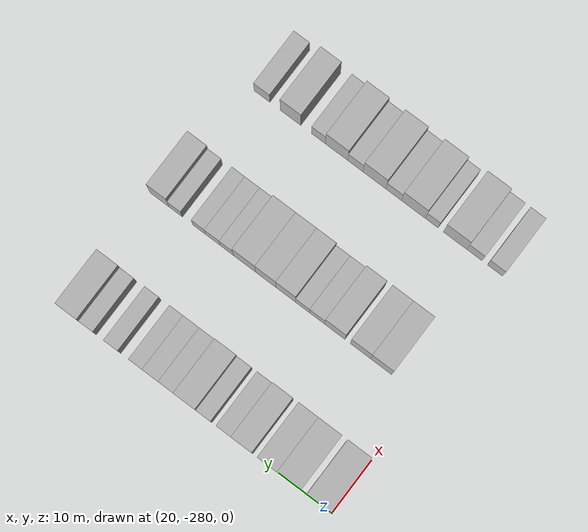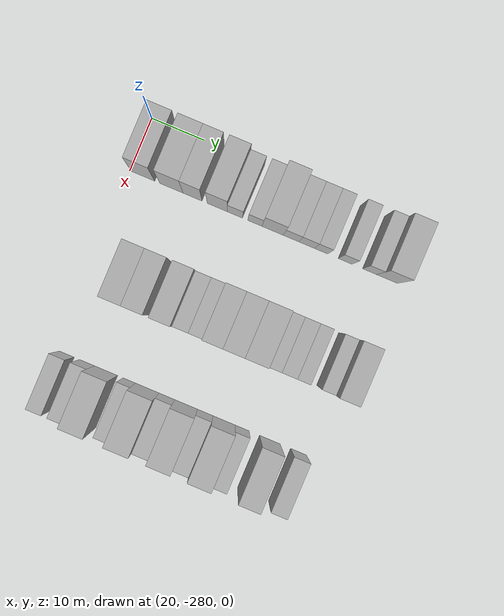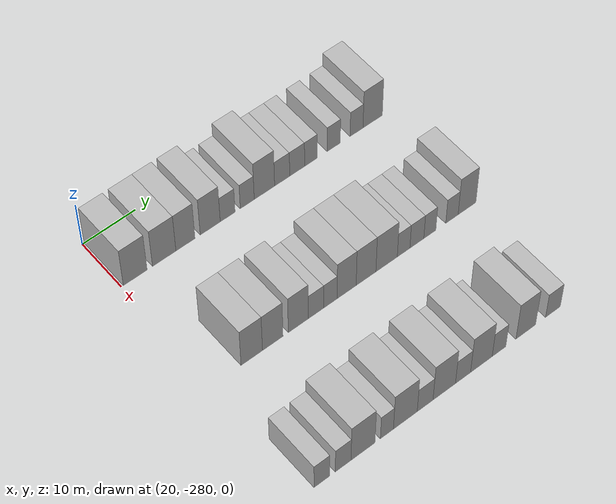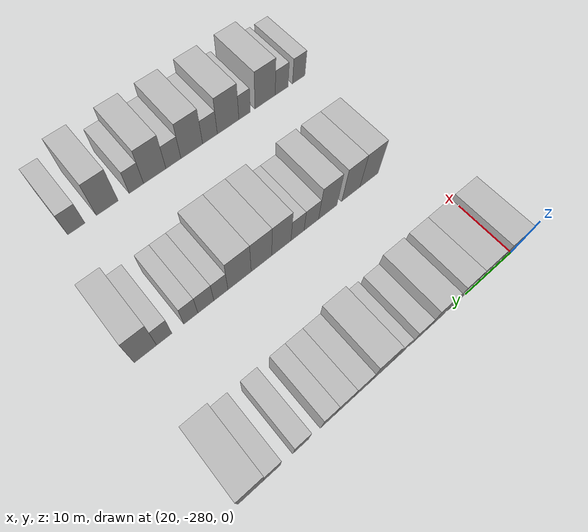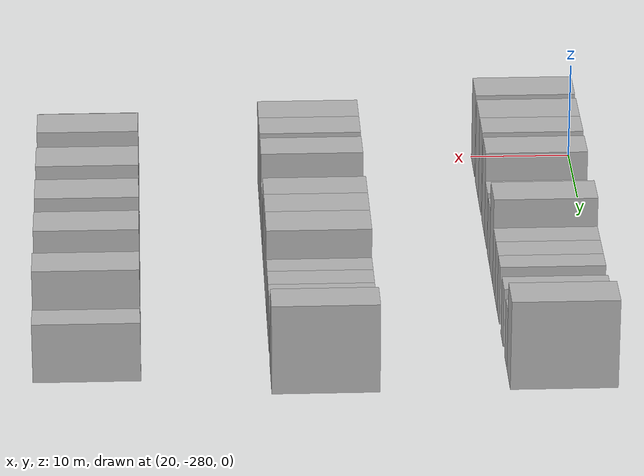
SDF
<sdf version="1.6">
 <world name="default">
  <model name="building_25">
   <static>1</static>
   <pose>25.0000 -277.4600 0 0.000000 0.000000 0.000000</pose>
   <link name="link">
    <pose>0 0 4.50 0 0 0</pose>
    <collision name="collision"><geometry><box><size>10.0000 4.4136 9.0000</size></box></geometry></collision>
    <visual name="visual">
     <cast_shadows>0</cast_shadows>
     <geometry><box><size>10.0000 4.4136 9.0000</size></box></geometry>
     <material>
      <script>
       <uri>model://HANNAS_wall/materials/scripts</uri>
       <uri>model://HANNAS_wall/materials/textures</uri>
       <name>vrc/HANNAS_wall</name>
      </script>
     </material>
    </visual>
   </link>
  </model>
  <model name="building_26">
   <static>1</static>
   <pose>25.0000 -272.0558 0 0.000000 0.000000 0.000000</pose>
   <link name="link">
    <pose>0 0 4.50 0 0 0</pose>
    <collision name="collision"><geometry><box><size>10.0000 4.3947 9.0000</size></box></geometry></collision>
    <visual name="visual">
     <cast_shadows>0</cast_shadows>
     <geometry><box><size>10.0000 4.3947 9.0000</size></box></geometry>
     <material>
      <script>
       <uri>model://HANNAS_wall/materials/scripts</uri>
       <uri>model://HANNAS_wall/materials/textures</uri>
       <name>vrc/HANNAS_wall</name>
      </script>
     </material>
    </visual>
   </link>
  </model>
  <model name="building_27">
   <static>1</static>
   <pose>25.0000 -268.0545 0 0.000000 0.000000 0.000000</pose>
   <link name="link">
    <pose>0 0 4.50 0 0 0</pose>
    <collision name="collision"><geometry><box><size>10.0000 3.6079 9.0000</size></box></geometry></collision>
    <visual name="visual">
     <cast_shadows>0</cast_shadows>
     <geometry><box><size>10.0000 3.6079 9.0000</size></box></geometry>
     <material>
      <script>
       <uri>model://HANNAS_wall/materials/scripts</uri>
       <uri>model://HANNAS_wall/materials/textures</uri>
       <name>vrc/HANNAS_wall</name>
      </script>
     </material>
    </visual>
   </link>
  </model>
  <model name="building_28">
   <static>1</static>
   <pose>25.0000 -263.3341 0 0.000000 0.000000 0.000000</pose>
   <link name="link">
    <pose>0 0 4.50 0 0 0</pose>
    <collision name="collision"><geometry><box><size>10.0000 3.8330 9.0000</size></box></geometry></collision>
    <visual name="visual">
     <cast_shadows>0</cast_shadows>
     <geometry><box><size>10.0000 3.8330 9.0000</size></box></geometry>
     <material>
      <script>
       <uri>model://HANNAS_wall/materials/scripts</uri>
       <uri>model://HANNAS_wall/materials/textures</uri>
       <name>vrc/HANNAS_wall</name>
      </script>
     </material>
    </visual>
   </link>
  </model>
  <model name="building_29">
   <static>1</static>
   <pose>25.0000 -259.9843 0 0.000000 0.000000 0.000000</pose>
   <link name="link">
    <pose>0 0 3.00 0 0 0</pose>
    <collision name="collision"><geometry><box><size>10.0000 2.8665 6.0000</size></box></geometry></collision>
    <visual name="visual">
     <cast_shadows>0</cast_shadows>
     <geometry><box><size>10.0000 2.8665 6.0000</size></box></geometry>
     <material>
      <script>
       <uri>model://HANNAS_wall/materials/scripts</uri>
       <uri>model://HANNAS_wall/materials/textures</uri>
       <name>vrc/HANNAS_wall</name>
      </script>
     </material>
    </visual>
   </link>
  </model>
  <model name="building_30">
   <static>1</static>
   <pose>25.0000 -256.1881 0 0.000000 0.000000 0.000000</pose>
   <link name="link">
    <pose>0 0 3.00 0 0 0</pose>
    <collision name="collision"><geometry><box><size>10.0000 2.7260 6.0000</size></box></geometry></collision>
    <visual name="visual">
     <cast_shadows>0</cast_shadows>
     <geometry><box><size>10.0000 2.7260 6.0000</size></box></geometry>
     <material>
      <script>
       <uri>model://HANNAS_wall/materials/scripts</uri>
       <uri>model://HANNAS_wall/materials/textures</uri>
       <name>vrc/HANNAS_wall</name>
      </script>
     </material>
    </visual>
   </link>
  </model>
  <model name="building_31">
   <static>1</static>
   <pose>25.0000 -252.8242 0 0.000000 0.000000 0.000000</pose>
   <link name="link">
    <pose>0 0 4.50 0 0 0</pose>
    <collision name="collision"><geometry><box><size>10.0000 4.0017 9.0000</size></box></geometry></collision>
    <visual name="visual">
     <cast_shadows>0</cast_shadows>
     <geometry><box><size>10.0000 4.0017 9.0000</size></box></geometry>
     <material>
      <script>
       <uri>model://HANNAS_wall/materials/scripts</uri>
       <uri>model://HANNAS_wall/materials/textures</uri>
       <name>vrc/HANNAS_wall</name>
      </script>
     </material>
    </visual>
   </link>
  </model>
  <model name="building_32">
   <static>1</static>
   <pose>25.0000 -249.3260 0 0.000000 0.000000 0.000000</pose>
   <link name="link">
    <pose>0 0 3.00 0 0 0</pose>
    <collision name="collision"><geometry><box><size>10.0000 2.9947 6.0000</size></box></geometry></collision>
    <visual name="visual">
     <cast_shadows>0</cast_shadows>
     <geometry><box><size>10.0000 2.9947 6.0000</size></box></geometry>
     <material>
      <script>
       <uri>model://HANNAS_wall/materials/scripts</uri>
       <uri>model://HANNAS_wall/materials/textures</uri>
       <name>vrc/HANNAS_wall</name>
      </script>
     </material>
    </visual>
   </link>
  </model>
  <model name="building_33">
   <static>1</static>
   <pose>25.0000 -246.3432 0 0.000000 0.000000 0.000000</pose>
   <link name="link">
    <pose>0 0 3.00 0 0 0</pose>
    <collision name="collision"><geometry><box><size>10.0000 2.9708 6.0000</size></box></geometry></collision>
    <visual name="visual">
     <cast_shadows>0</cast_shadows>
     <geometry><box><size>10.0000 2.9708 6.0000</size></box></geometry>
     <material>
      <script>
       <uri>model://HANNAS_wall/materials/scripts</uri>
       <uri>model://HANNAS_wall/materials/textures</uri>
       <name>vrc/HANNAS_wall</name>
      </script>
     </material>
    </visual>
   </link>
  </model>
  <model name="building_34">
   <static>1</static>
   <pose>25.0000 -243.5842 0 0.000000 0.000000 0.000000</pose>
   <link name="link">
    <pose>0 0 3.00 0 0 0</pose>
    <collision name="collision"><geometry><box><size>10.0000 2.5471 6.0000</size></box></geometry></collision>
    <visual name="visual">
     <cast_shadows>0</cast_shadows>
     <geometry><box><size>10.0000 2.5471 6.0000</size></box></geometry>
     <material>
      <script>
       <uri>model://HANNAS_wall/materials/scripts</uri>
       <uri>model://HANNAS_wall/materials/textures</uri>
       <name>vrc/HANNAS_wall</name>
      </script>
     </material>
    </visual>
   </link>
  </model>
  <model name="building_35">
   <static>1</static>
   <pose>25.0000 -238.9845 0 0.000000 0.000000 0.000000</pose>
   <link name="link">
    <pose>0 0 3.00 0 0 0</pose>
    <collision name="collision"><geometry><box><size>10.0000 2.6523 6.0000</size></box></geometry></collision>
    <visual name="visual">
     <cast_shadows>0</cast_shadows>
     <geometry><box><size>10.0000 2.6523 6.0000</size></box></geometry>
     <material>
      <script>
       <uri>model://HANNAS_wall/materials/scripts</uri>
       <uri>model://HANNAS_wall/materials/textures</uri>
       <name>vrc/HANNAS_wall</name>
      </script>
     </material>
    </visual>
   </link>
  </model>
  <model name="building_36">
   <static>1</static>
   <pose>25.0000 -234.3334 0 0.000000 0.000000 0.000000</pose>
   <link name="link">
    <pose>0 0 3.00 0 0 0</pose>
    <collision name="collision"><geometry><box><size>10.0000 2.6500 6.0000</size></box></geometry></collision>
    <visual name="visual">
     <cast_shadows>0</cast_shadows>
     <geometry><box><size>10.0000 2.6500 6.0000</size></box></geometry>
     <material>
      <script>
       <uri>model://HANNAS_wall/materials/scripts</uri>
       <uri>model://HANNAS_wall/materials/textures</uri>
       <name>vrc/HANNAS_wall</name>
      </script>
     </material>
    </visual>
   </link>
  </model>
  <model name="building_37">
   <static>1</static>
   <pose>25.0000 -231.0118 0 0.000000 0.000000 0.000000</pose>
   <link name="link">
    <pose>0 0 4.50 0 0 0</pose>
    <collision name="collision"><geometry><box><size>10.0000 3.9930 9.0000</size></box></geometry></collision>
    <visual name="visual">
     <cast_shadows>0</cast_shadows>
     <geometry><box><size>10.0000 3.9930 9.0000</size></box></geometry>
     <material>
      <script>
       <uri>model://HANNAS_wall/materials/scripts</uri>
       <uri>model://HANNAS_wall/materials/textures</uri>
       <name>vrc/HANNAS_wall</name>
      </script>
     </material>
    </visual>
   </link>
  </model>
  <model name="building_214">
   <static>1</static>
   <pose>47.0000 -272.7263 0 0.000000 0.000000 0.000000</pose>
   <link name="link">
    <pose>0 0 4.50 0 0 0</pose>
    <collision name="collision"><geometry><box><size>10.0000 3.9725 9.0000</size></box></geometry></collision>
    <visual name="visual">
     <cast_shadows>0</cast_shadows>
     <geometry><box><size>10.0000 3.9725 9.0000</size></box></geometry>
     <material>
      <script>
       <uri>model://HANNAS_wall/materials/scripts</uri>
       <uri>model://HANNAS_wall/materials/textures</uri>
       <name>vrc/HANNAS_wall</name>
      </script>
     </material>
    </visual>
   </link>
  </model>
  <model name="building_215">
   <static>1</static>
   <pose>47.0000 -268.8265 0 0.000000 0.000000 0.000000</pose>
   <link name="link">
    <pose>0 0 4.50 0 0 0</pose>
    <collision name="collision"><geometry><box><size>10.0000 3.8269 9.0000</size></box></geometry></collision>
    <visual name="visual">
     <cast_shadows>0</cast_shadows>
     <geometry><box><size>10.0000 3.8269 9.0000</size></box></geometry>
     <material>
      <script>
       <uri>model://HANNAS_wall/materials/scripts</uri>
       <uri>model://HANNAS_wall/materials/textures</uri>
       <name>vrc/HANNAS_wall</name>
      </script>
     </material>
    </visual>
   </link>
  </model>
  <model name="building_216">
   <static>1</static>
   <pose>47.0000 -264.0176 0 0.000000 0.000000 0.000000</pose>
   <link name="link">
    <pose>0 0 4.50 0 0 0</pose>
    <collision name="collision"><geometry><box><size>10.0000 3.7909 9.0000</size></box></geometry></collision>
    <visual name="visual">
     <cast_shadows>0</cast_shadows>
     <geometry><box><size>10.0000 3.7909 9.0000</size></box></geometry>
     <material>
      <script>
       <uri>model://HANNAS_wall/materials/scripts</uri>
       <uri>model://HANNAS_wall/materials/textures</uri>
       <name>vrc/HANNAS_wall</name>
      </script>
     </material>
    </visual>
   </link>
  </model>
  <model name="building_217">
   <static>1</static>
   <pose>47.0000 -260.6690 0 0.000000 0.000000 0.000000</pose>
   <link name="link">
    <pose>0 0 3.00 0 0 0</pose>
    <collision name="collision"><geometry><box><size>10.0000 2.9064 6.0000</size></box></geometry></collision>
    <visual name="visual">
     <cast_shadows>0</cast_shadows>
     <geometry><box><size>10.0000 2.9064 6.0000</size></box></geometry>
     <material>
      <script>
       <uri>model://HANNAS_wall/materials/scripts</uri>
       <uri>model://HANNAS_wall/materials/textures</uri>
       <name>vrc/HANNAS_wall</name>
      </script>
     </material>
    </visual>
   </link>
  </model>
  <model name="building_218">
   <static>1</static>
   <pose>47.0000 -257.9251 0 0.000000 0.000000 0.000000</pose>
   <link name="link">
    <pose>0 0 3.00 0 0 0</pose>
    <collision name="collision"><geometry><box><size>10.0000 2.5814 6.0000</size></box></geometry></collision>
    <visual name="visual">
     <cast_shadows>0</cast_shadows>
     <geometry><box><size>10.0000 2.5814 6.0000</size></box></geometry>
     <material>
      <script>
       <uri>model://HANNAS_wall/materials/scripts</uri>
       <uri>model://HANNAS_wall/materials/textures</uri>
       <name>vrc/HANNAS_wall</name>
      </script>
     </material>
    </visual>
   </link>
  </model>
  <model name="building_219">
   <static>1</static>
   <pose>47.0000 -254.7875 0 0.000000 0.000000 0.000000</pose>
   <link name="link">
    <pose>0 0 4.50 0 0 0</pose>
    <collision name="collision"><geometry><box><size>10.0000 3.6937 9.0000</size></box></geometry></collision>
    <visual name="visual">
     <cast_shadows>0</cast_shadows>
     <geometry><box><size>10.0000 3.6937 9.0000</size></box></geometry>
     <material>
      <script>
       <uri>model://HANNAS_wall/materials/scripts</uri>
       <uri>model://HANNAS_wall/materials/textures</uri>
       <name>vrc/HANNAS_wall</name>
      </script>
     </material>
    </visual>
   </link>
  </model>
  <model name="building_220">
   <static>1</static>
   <pose>47.0000 -251.0122 0 0.000000 0.000000 0.000000</pose>
   <link name="link">
    <pose>0 0 4.50 0 0 0</pose>
    <collision name="collision"><geometry><box><size>10.0000 3.8569 9.0000</size></box></geometry></collision>
    <visual name="visual">
     <cast_shadows>0</cast_shadows>
     <geometry><box><size>10.0000 3.8569 9.0000</size></box></geometry>
     <material>
      <script>
       <uri>model://HANNAS_wall/materials/scripts</uri>
       <uri>model://HANNAS_wall/materials/textures</uri>
       <name>vrc/HANNAS_wall</name>
      </script>
     </material>
    </visual>
   </link>
  </model>
  <model name="building_221">
   <static>1</static>
   <pose>47.0000 -246.9754 0 0.000000 0.000000 0.000000</pose>
   <link name="link">
    <pose>0 0 4.50 0 0 0</pose>
    <collision name="collision"><geometry><box><size>10.0000 4.2168 9.0000</size></box></geometry></collision>
    <visual name="visual">
     <cast_shadows>0</cast_shadows>
     <geometry><box><size>10.0000 4.2168 9.0000</size></box></geometry>
     <material>
      <script>
       <uri>model://HANNAS_wall/materials/scripts</uri>
       <uri>model://HANNAS_wall/materials/textures</uri>
       <name>vrc/HANNAS_wall</name>
      </script>
     </material>
    </visual>
   </link>
  </model>
  <model name="building_222">
   <static>1</static>
   <pose>47.0000 -243.6121 0 0.000000 0.000000 0.000000</pose>
   <link name="link">
    <pose>0 0 3.00 0 0 0</pose>
    <collision name="collision"><geometry><box><size>10.0000 2.5097 6.0000</size></box></geometry></collision>
    <visual name="visual">
     <cast_shadows>0</cast_shadows>
     <geometry><box><size>10.0000 2.5097 6.0000</size></box></geometry>
     <material>
      <script>
       <uri>model://HANNAS_wall/materials/scripts</uri>
       <uri>model://HANNAS_wall/materials/textures</uri>
       <name>vrc/HANNAS_wall</name>
      </script>
     </material>
    </visual>
   </link>
  </model>
  <model name="building_223">
   <static>1</static>
   <pose>47.0000 -240.9663 0 0.000000 0.000000 0.000000</pose>
   <link name="link">
    <pose>0 0 3.00 0 0 0</pose>
    <collision name="collision"><geometry><box><size>10.0000 2.7819 6.0000</size></box></geometry></collision>
    <visual name="visual">
     <cast_shadows>0</cast_shadows>
     <geometry><box><size>10.0000 2.7819 6.0000</size></box></geometry>
     <material>
      <script>
       <uri>model://HANNAS_wall/materials/scripts</uri>
       <uri>model://HANNAS_wall/materials/textures</uri>
       <name>vrc/HANNAS_wall</name>
      </script>
     </material>
    </visual>
   </link>
  </model>
  <model name="building_224">
   <static>1</static>
   <pose>47.0000 -238.3632 0 0.000000 0.000000 0.000000</pose>
   <link name="link">
    <pose>0 0 3.00 0 0 0</pose>
    <collision name="collision"><geometry><box><size>10.0000 2.4244 6.0000</size></box></geometry></collision>
    <visual name="visual">
     <cast_shadows>0</cast_shadows>
     <geometry><box><size>10.0000 2.4244 6.0000</size></box></geometry>
     <material>
      <script>
       <uri>model://HANNAS_wall/materials/scripts</uri>
       <uri>model://HANNAS_wall/materials/textures</uri>
       <name>vrc/HANNAS_wall</name>
      </script>
     </material>
    </visual>
   </link>
  </model>
  <model name="building_225">
   <static>1</static>
   <pose>47.0000 -233.8902 0 0.000000 0.000000 0.000000</pose>
   <link name="link">
    <pose>0 0 3.00 0 0 0</pose>
    <collision name="collision"><geometry><box><size>10.0000 2.5216 6.0000</size></box></geometry></collision>
    <visual name="visual">
     <cast_shadows>0</cast_shadows>
     <geometry><box><size>10.0000 2.5216 6.0000</size></box></geometry>
     <material>
      <script>
       <uri>model://HANNAS_wall/materials/scripts</uri>
       <uri>model://HANNAS_wall/materials/textures</uri>
       <name>vrc/HANNAS_wall</name>
      </script>
     </material>
    </visual>
   </link>
  </model>
  <model name="building_226">
   <static>1</static>
   <pose>47.0000 -230.8095 0 0.000000 0.000000 0.000000</pose>
   <link name="link">
    <pose>0 0 4.50 0 0 0</pose>
    <collision name="collision"><geometry><box><size>10.0000 3.6398 9.0000</size></box></geometry></collision>
    <visual name="visual">
     <cast_shadows>0</cast_shadows>
     <geometry><box><size>10.0000 3.6398 9.0000</size></box></geometry>
     <material>
      <script>
       <uri>model://HANNAS_wall/materials/scripts</uri>
       <uri>model://HANNAS_wall/materials/textures</uri>
       <name>vrc/HANNAS_wall</name>
      </script>
     </material>
    </visual>
   </link>
  </model>
  <model name="building_401">
   <static>1</static>
   <pose>69.0000 -277.6956 0 0.000000 0.000000 0.000000</pose>
   <link name="link">
    <pose>0 0 3.00 0 0 0</pose>
    <collision name="collision"><geometry><box><size>10.0000 2.8400 6.0000</size></box></geometry></collision>
    <visual name="visual">
     <cast_shadows>0</cast_shadows>
     <geometry><box><size>10.0000 2.8400 6.0000</size></box></geometry>
     <material>
      <script>
       <uri>model://HANNAS_wall/materials/scripts</uri>
       <uri>model://HANNAS_wall/materials/textures</uri>
       <name>vrc/HANNAS_wall</name>
      </script>
     </material>
    </visual>
   </link>
  </model>
  <model name="building_402">
   <static>1</static>
   <pose>69.0000 -273.8410 0 0.000000 0.000000 0.000000</pose>
   <link name="link">
    <pose>0 0 3.00 0 0 0</pose>
    <collision name="collision"><geometry><box><size>10.0000 2.8692 6.0000</size></box></geometry></collision>
    <visual name="visual">
     <cast_shadows>0</cast_shadows>
     <geometry><box><size>10.0000 2.8692 6.0000</size></box></geometry>
     <material>
      <script>
       <uri>model://HANNAS_wall/materials/scripts</uri>
       <uri>model://HANNAS_wall/materials/textures</uri>
       <name>vrc/HANNAS_wall</name>
      </script>
     </material>
    </visual>
   </link>
  </model>
  <model name="building_403">
   <static>1</static>
   <pose>69.0000 -270.2000 0 0.000000 0.000000 0.000000</pose>
   <link name="link">
    <pose>0 0 4.50 0 0 0</pose>
    <collision name="collision"><geometry><box><size>10.0000 4.4128 9.0000</size></box></geometry></collision>
    <visual name="visual">
     <cast_shadows>0</cast_shadows>
     <geometry><box><size>10.0000 4.4128 9.0000</size></box></geometry>
     <material>
      <script>
       <uri>model://HANNAS_wall/materials/scripts</uri>
       <uri>model://HANNAS_wall/materials/textures</uri>
       <name>vrc/HANNAS_wall</name>
      </script>
     </material>
    </visual>
   </link>
  </model>
  <model name="building_404">
   <static>1</static>
   <pose>69.0000 -265.7783 0 0.000000 0.000000 0.000000</pose>
   <link name="link">
    <pose>0 0 3.00 0 0 0</pose>
    <collision name="collision"><geometry><box><size>10.0000 2.4305 6.0000</size></box></geometry></collision>
    <visual name="visual">
     <cast_shadows>0</cast_shadows>
     <geometry><box><size>10.0000 2.4305 6.0000</size></box></geometry>
     <material>
      <script>
       <uri>model://HANNAS_wall/materials/scripts</uri>
       <uri>model://HANNAS_wall/materials/textures</uri>
       <name>vrc/HANNAS_wall</name>
      </script>
     </material>
    </visual>
   </link>
  </model>
  <model name="building_405">
   <static>1</static>
   <pose>69.0000 -262.3274 0 0.000000 0.000000 0.000000</pose>
   <link name="link">
    <pose>0 0 4.50 0 0 0</pose>
    <collision name="collision"><geometry><box><size>10.0000 4.4711 9.0000</size></box></geometry></collision>
    <visual name="visual">
     <cast_shadows>0</cast_shadows>
     <geometry><box><size>10.0000 4.4711 9.0000</size></box></geometry>
     <material>
      <script>
       <uri>model://HANNAS_wall/materials/scripts</uri>
       <uri>model://HANNAS_wall/materials/textures</uri>
       <name>vrc/HANNAS_wall</name>
      </script>
     </material>
    </visual>
   </link>
  </model>
  <model name="building_406">
   <static>1</static>
   <pose>69.0000 -258.5951 0 0.000000 0.000000 0.000000</pose>
   <link name="link">
    <pose>0 0 3.00 0 0 0</pose>
    <collision name="collision"><geometry><box><size>10.0000 2.9934 6.0000</size></box></geometry></collision>
    <visual name="visual">
     <cast_shadows>0</cast_shadows>
     <geometry><box><size>10.0000 2.9934 6.0000</size></box></geometry>
     <material>
      <script>
       <uri>model://HANNAS_wall/materials/scripts</uri>
       <uri>model://HANNAS_wall/materials/textures</uri>
       <name>vrc/HANNAS_wall</name>
      </script>
     </material>
    </visual>
   </link>
  </model>
  <model name="building_407">
   <static>1</static>
   <pose>69.0000 -254.9467 0 0.000000 0.000000 0.000000</pose>
   <link name="link">
    <pose>0 0 4.50 0 0 0</pose>
    <collision name="collision"><geometry><box><size>10.0000 4.3035 9.0000</size></box></geometry></collision>
    <visual name="visual">
     <cast_shadows>0</cast_shadows>
     <geometry><box><size>10.0000 4.3035 9.0000</size></box></geometry>
     <material>
      <script>
       <uri>model://HANNAS_wall/materials/scripts</uri>
       <uri>model://HANNAS_wall/materials/textures</uri>
       <name>vrc/HANNAS_wall</name>
      </script>
     </material>
    </visual>
   </link>
  </model>
  <model name="building_408">
   <static>1</static>
   <pose>69.0000 -251.3367 0 0.000000 0.000000 0.000000</pose>
   <link name="link">
    <pose>0 0 3.00 0 0 0</pose>
    <collision name="collision"><geometry><box><size>10.0000 2.9164 6.0000</size></box></geometry></collision>
    <visual name="visual">
     <cast_shadows>0</cast_shadows>
     <geometry><box><size>10.0000 2.9164 6.0000</size></box></geometry>
     <material>
      <script>
       <uri>model://HANNAS_wall/materials/scripts</uri>
       <uri>model://HANNAS_wall/materials/textures</uri>
       <name>vrc/HANNAS_wall</name>
      </script>
     </material>
    </visual>
   </link>
  </model>
  <model name="building_409">
   <static>1</static>
   <pose>69.0000 -247.7667 0 0.000000 0.000000 0.000000</pose>
   <link name="link">
    <pose>0 0 4.50 0 0 0</pose>
    <collision name="collision"><geometry><box><size>10.0000 4.2236 9.0000</size></box></geometry></collision>
    <visual name="visual">
     <cast_shadows>0</cast_shadows>
     <geometry><box><size>10.0000 4.2236 9.0000</size></box></geometry>
     <material>
      <script>
       <uri>model://HANNAS_wall/materials/scripts</uri>
       <uri>model://HANNAS_wall/materials/textures</uri>
       <name>vrc/HANNAS_wall</name>
      </script>
     </material>
    </visual>
   </link>
  </model>
  <model name="building_410">
   <static>1</static>
   <pose>69.0000 -244.3140 0 0.000000 0.000000 0.000000</pose>
   <link name="link">
    <pose>0 0 3.00 0 0 0</pose>
    <collision name="collision"><geometry><box><size>10.0000 2.6819 6.0000</size></box></geometry></collision>
    <visual name="visual">
     <cast_shadows>0</cast_shadows>
     <geometry><box><size>10.0000 2.6819 6.0000</size></box></geometry>
     <material>
      <script>
       <uri>model://HANNAS_wall/materials/scripts</uri>
       <uri>model://HANNAS_wall/materials/textures</uri>
       <name>vrc/HANNAS_wall</name>
      </script>
     </material>
    </visual>
   </link>
  </model>
  <model name="building_411">
   <static>1</static>
   <pose>69.0000 -239.0184 0 0.000000 0.000000 0.000000</pose>
   <link name="link">
    <pose>0 0 4.50 0 0 0</pose>
    <collision name="collision"><geometry><box><size>10.0000 3.9093 9.0000</size></box></geometry></collision>
    <visual name="visual">
     <cast_shadows>0</cast_shadows>
     <geometry><box><size>10.0000 3.9093 9.0000</size></box></geometry>
     <material>
      <script>
       <uri>model://HANNAS_wall/materials/scripts</uri>
       <uri>model://HANNAS_wall/materials/textures</uri>
       <name>vrc/HANNAS_wall</name>
      </script>
     </material>
    </visual>
   </link>
  </model>
  <model name="building_412">
   <static>1</static>
   <pose>69.0000 -233.5696 0 0.000000 0.000000 0.000000</pose>
   <link name="link">
    <pose>0 0 3.00 0 0 0</pose>
    <collision name="collision"><geometry><box><size>10.0000 2.9883 6.0000</size></box></geometry></collision>
    <visual name="visual">
     <cast_shadows>0</cast_shadows>
     <geometry><box><size>10.0000 2.9883 6.0000</size></box></geometry>
     <material>
      <script>
       <uri>model://HANNAS_wall/materials/scripts</uri>
       <uri>model://HANNAS_wall/materials/textures</uri>
       <name>vrc/HANNAS_wall</name>
      </script>
     </material>
    </visual>
   </link>
  </model>
 </world>
</sdf>
